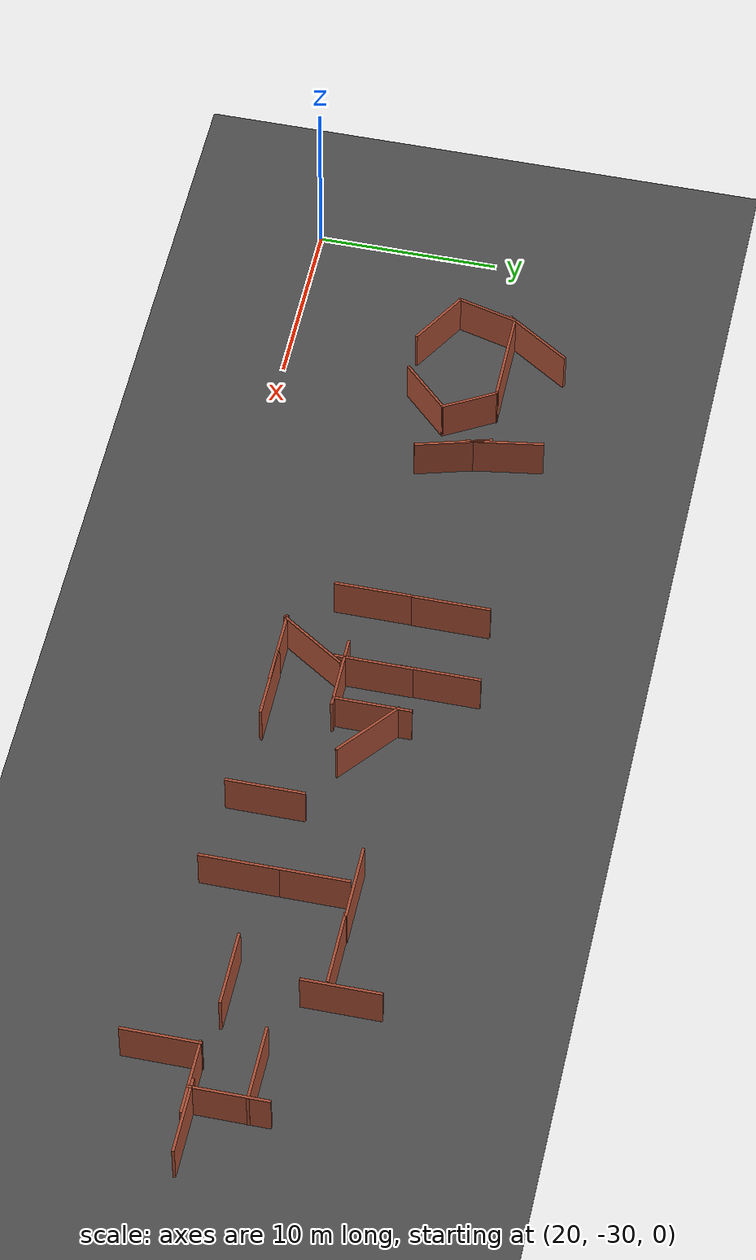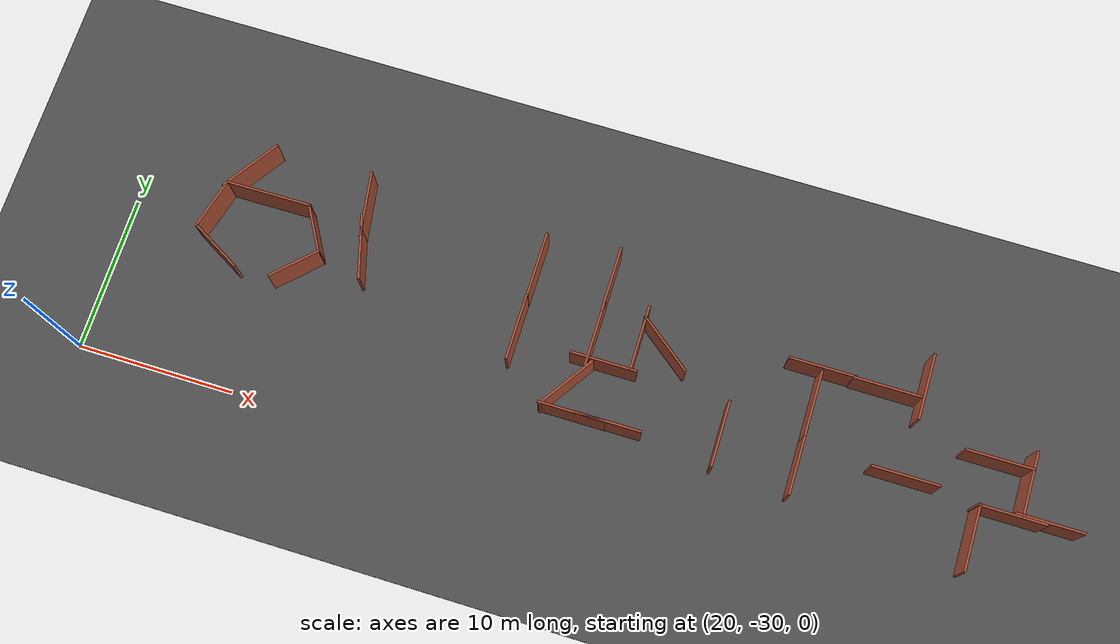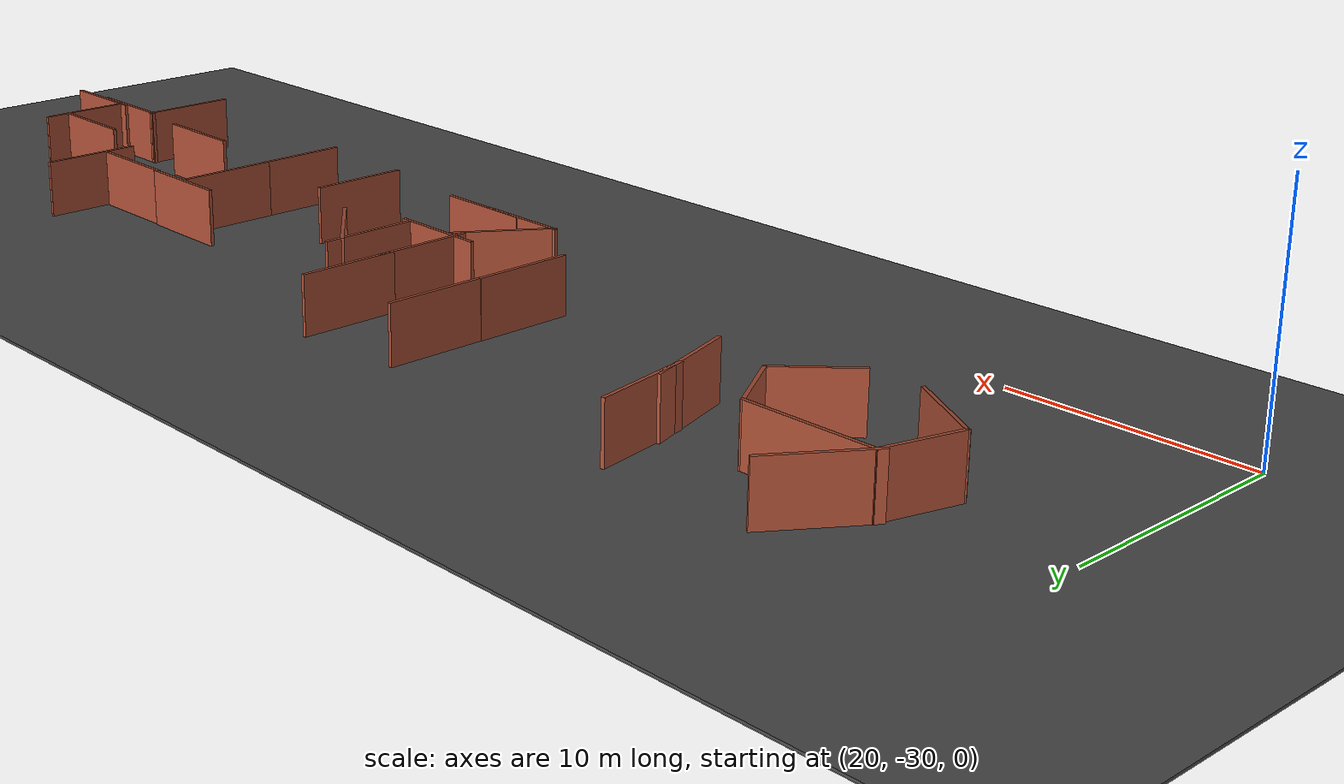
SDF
<sdf version="1.6">
 <world name="default">
  <model name="ground_plane">
   <static>1</static>
   <link name="link">
    <collision name="collision">
     <geometry><plane><normal>0 0 1</normal><size>200 200</size></plane></geometry>
     <surface><friction><ode><mu>100</mu><mu2>50</mu2></ode></friction></surface>
    </collision>
    <visual name="visual">
     <cast_shadows>0</cast_shadows>
     <geometry><plane><normal>0 0 1</normal><size>200 200</size></plane></geometry>
     <material>
      <script><uri>file://media/materials/scripts/gazebo.material</uri><name>Gazebo/Grey</name></script>
     </material>
    </visual>
   </link>
  </model>
  <model name="asphalt_plane">
   <static>1</static>
   <link name="link">
    <collision name="collision"><geometry><box><size>200 200 0.1</size></box></geometry></collision>
    <visual name="visual">
     <cast_shadows>0</cast_shadows>
     <geometry><box><size>200 200 0.1</size></box></geometry>
     <material>
      <script>
       <uri>model://asphalt_plane/materials/scripts</uri>
       <uri>model://asphalt_plane/materials/textures</uri>
       <name>vrc/asphalt</name>
      </script>
     </material>
    </visual>
   </link>
  </model>
  <model name="brick_worlds_1_clone_1_clone_clone_0_clone_3">
   <pose>45.9096 -21.4531 0 0 -0 0</pose>
   <link name="Wall_0">
    <collision name="Wall_0_Collision">
     <geometry><box><size>4.25 0.15 2.5</size></box></geometry>
     <pose>0 0 1.25 0 -0 0</pose>
    </collision>
    <visual name="Wall_0_Visual">
     <pose>0 0 1.25 0 -0 0</pose>
     <geometry><box><size>4.25 0.15 2.5</size></box></geometry>
     <material>
      <script><uri>file://media/materials/scripts/gazebo.material</uri><name>Gazebo/Bricks</name></script>
      <ambient>1 1 1 1</ambient>
     </material>
    </visual>
    <pose>0 -0 0 0 -0 1.5708</pose>
   </link>
   <static>1</static>
  </model>
  <model name="brick_worlds_1_clone_1_clone_clone_0_clone_5">
   <pose>45.9289 -17.2509 0 0 -0 0</pose>
   <link name="Wall_0">
    <collision name="Wall_0_Collision">
     <geometry><box><size>4.25 0.15 2.5</size></box></geometry>
     <pose>0 0 1.25 0 -0 0</pose>
    </collision>
    <visual name="Wall_0_Visual">
     <pose>0 0 1.25 0 -0 0</pose>
     <geometry><box><size>4.25 0.15 2.5</size></box></geometry>
     <material>
      <script><uri>file://media/materials/scripts/gazebo.material</uri><name>Gazebo/Bricks</name></script>
      <ambient>1 1 1 1</ambient>
     </material>
    </visual>
    <pose>0 -0 0 0 -0 1.5708</pose>
   </link>
   <static>1</static>
  </model>
  <model name="brick_room1_clone">
   <pose>28.8484 -20.2692 0 0 -0 0</pose>
   <link name="Wall_11">
    <collision name="Wall_11_Collision">
     <geometry><box><size>3.25 0.15 2.5</size></box></geometry>
     <pose>0 0 1.25 0 -0 0</pose>
    </collision>
    <visual name="Wall_11_Visual">
     <pose>0 0 1.25 0 -0 0</pose>
     <geometry><box><size>3.25 0.15 2.5</size></box></geometry>
     <material>
      <script><uri>file://media/materials/scripts/gazebo.material</uri><name>Gazebo/Bricks</name></script>
      <ambient>1 1 1 1</ambient>
     </material>
    </visual>
    <pose>3.12132 1.19483 0 0 0 -1.0472</pose>
   </link>
   <link name="Wall_12">
    <collision name="Wall_12_Collision">
     <geometry><box><size>3.5 0.15 2.5</size></box></geometry>
     <pose>0 0 1.25 0 -0 0</pose>
    </collision>
    <visual name="Wall_12_Visual">
     <pose>0 0 1.25 0 -0 0</pose>
     <geometry><box><size>3.5 0.15 2.5</size></box></geometry>
     <material>
      <script><uri>file://media/materials/scripts/gazebo.material</uri><name>Gazebo/Bricks</name></script>
      <ambient>1 1 1 1</ambient>
     </material>
    </visual>
    <pose>2.71192 -1.33192 0 0 0 -2.35619</pose>
   </link>
   <link name="Wall_7">
    <collision name="Wall_7_Collision">
     <geometry><box><size>5.52935 0.15 2.5</size></box></geometry>
     <pose>0 0 1.25 0 -0 0</pose>
    </collision>
    <visual name="Wall_7_Visual">
     <pose>0 0 1.25 0 -0 0</pose>
     <geometry><box><size>5.52935 0.15 2.5</size></box></geometry>
     <material>
      <script><uri>file://media/materials/scripts/gazebo.material</uri><name>Gazebo/Bricks</name></script>
      <ambient>1 1 1 1</ambient>
     </material>
    </visual>
    <pose>-0.343285 2.51793 0 0 0 -3.13444</pose>
   </link>
   <link name="Wall_8">
    <collision name="Wall_8_Collision">
     <geometry><box><size>3.5 0.15 2.5</size></box></geometry>
     <pose>0 0 1.25 0 -0 0</pose>
    </collision>
    <visual name="Wall_8_Visual">
     <pose>0 0 1.25 0 -0 0</pose>
     <geometry><box><size>3.5 0.15 2.5</size></box></geometry>
     <material>
      <script><uri>file://media/materials/scripts/gazebo.material</uri><name>Gazebo/Bricks</name></script>
      <ambient>1 1 1 1</ambient>
     </material>
    </visual>
    <pose>-3.46641 0.880761 0 0 0 -1.8326</pose>
   </link>
   <link name="Wall_9">
    <collision name="Wall_9_Collision">
     <geometry><box><size>3.75 0.15 2.5</size></box></geometry>
     <pose>0 0 1.25 0 -0 0</pose>
    </collision>
    <visual name="Wall_9_Visual">
     <pose>0 0 1.25 0 -0 0</pose>
     <geometry><box><size>3.75 0.15 2.5</size></box></geometry>
     <material>
      <script><uri>file://media/materials/scripts/gazebo.material</uri><name>Gazebo/Bricks</name></script>
      <ambient>1 1 1 1</ambient>
     </material>
    </visual>
    <pose>-2.34109 -1.63716 0 0 0 -0.523599</pose>
   </link>
   <static>1</static>
  </model>
  <model name="brick_worlds_1_clone_clone_2">
   <pose>75.4102 -25.8949 0 0 -0 0</pose>
   <link name="Wall_0">
    <collision name="Wall_0_Collision">
     <geometry><box><size>4.25 0.15 2.5</size></box></geometry>
     <pose>0 0 1.25 0 -0 0</pose>
    </collision>
    <visual name="Wall_0_Visual">
     <pose>0 0 1.25 0 -0 0</pose>
     <geometry><box><size>4.25 0.15 2.5</size></box></geometry>
     <material>
      <script><uri>file://media/materials/scripts/gazebo.material</uri><name>Gazebo/Bricks</name></script>
      <ambient>1 1 1 1</ambient>
     </material>
    </visual>
    <pose>0 -0 0 0 -0 1.5708</pose>
   </link>
   <static>1</static>
  </model>
  <model name="brick_worlds_1_clone_0_clone_clone_0_clone_0">
   <pose>77.3992 -23.8784 0 0 0 -1.57092</pose>
   <link name="Wall_0">
    <collision name="Wall_0_Collision">
     <geometry><box><size>4.25 0.15 2.5</size></box></geometry>
     <pose>0 0 1.25 0 -0 0</pose>
    </collision>
    <visual name="Wall_0_Visual">
     <pose>0 0 1.25 0 -0 0</pose>
     <geometry><box><size>4.25 0.15 2.5</size></box></geometry>
     <material>
      <script><uri>file://media/materials/scripts/gazebo.material</uri><name>Gazebo/Bricks</name></script>
      <ambient>1 1 1 1</ambient>
     </material>
    </visual>
    <pose>0 -0 0 0 -0 1.5708</pose>
   </link>
   <static>1</static>
  </model>
  <model name="brick_worlds_1_clone_0_clone_clone_0_clone_1">
   <pose>79.6307 -23.7333 0 0 0 -1.57092</pose>
   <link name="Wall_0">
    <collision name="Wall_0_Collision">
     <geometry><box><size>4.25 0.15 2.5</size></box></geometry>
     <pose>0 0 1.25 0 -0 0</pose>
    </collision>
    <visual name="Wall_0_Visual">
     <pose>0 0 1.25 0 -0 0</pose>
     <geometry><box><size>4.25 0.15 2.5</size></box></geometry>
     <material>
      <script><uri>file://media/materials/scripts/gazebo.material</uri><name>Gazebo/Bricks</name></script>
      <ambient>1 1 1 1</ambient>
     </material>
    </visual>
    <pose>0 -0 0 0 -0 1.5708</pose>
   </link>
   <static>1</static>
  </model>
  <model name="brick_worlds_1_clone_0_clone_clone_0_clone_3">
   <pose>70.8072 -23.4621 0 0 0 -1.57092</pose>
   <link name="Wall_0">
    <collision name="Wall_0_Collision">
     <geometry><box><size>4.25 0.15 2.5</size></box></geometry>
     <pose>0 0 1.25 0 -0 0</pose>
    </collision>
    <visual name="Wall_0_Visual">
     <pose>0 0 1.25 0 -0 0</pose>
     <geometry><box><size>4.25 0.15 2.5</size></box></geometry>
     <material>
      <script><uri>file://media/materials/scripts/gazebo.material</uri><name>Gazebo/Bricks</name></script>
      <ambient>1 1 1 1</ambient>
     </material>
    </visual>
    <pose>0 -0 0 0 -0 1.5708</pose>
   </link>
   <static>1</static>
  </model>
  <model name="brick_worlds_1_clone_0_clone_clone_0_clone_4">
   <pose>64.4358 -18.4576 0 0 0 -1.57092</pose>
   <link name="Wall_0">
    <collision name="Wall_0_Collision">
     <geometry><box><size>4.25 0.15 2.5</size></box></geometry>
     <pose>0 0 1.25 0 -0 0</pose>
    </collision>
    <visual name="Wall_0_Visual">
     <pose>0 0 1.25 0 -0 0</pose>
     <geometry><box><size>4.25 0.15 2.5</size></box></geometry>
     <material>
      <script><uri>file://media/materials/scripts/gazebo.material</uri><name>Gazebo/Bricks</name></script>
      <ambient>1 1 1 1</ambient>
     </material>
    </visual>
    <pose>0 -0 0 0 -0 1.5708</pose>
   </link>
   <static>1</static>
  </model>
  <model name="brick_worlds_1_clone_clone_0_clone">
   <pose>64.4379 -20.7736 0 0 -0 0</pose>
   <link name="Wall_0">
    <collision name="Wall_0_Collision">
     <geometry><box><size>4.25 0.15 2.5</size></box></geometry>
     <pose>0 0 1.25 0 -0 0</pose>
    </collision>
    <visual name="Wall_0_Visual">
     <pose>0 0 1.25 0 -0 0</pose>
     <geometry><box><size>4.25 0.15 2.5</size></box></geometry>
     <material>
      <script><uri>file://media/materials/scripts/gazebo.material</uri><name>Gazebo/Bricks</name></script>
      <ambient>1 1 1 1</ambient>
     </material>
    </visual>
    <pose>0 -0 0 0 -0 1.5708</pose>
   </link>
   <static>1</static>
  </model>
  <model name="brick_worlds_1_clone_clone_0_clone_1">
   <pose>59.5905 -24.2097 0 0 -0 0</pose>
   <link name="Wall_0">
    <collision name="Wall_0_Collision">
     <geometry><box><size>4.25 0.15 2.5</size></box></geometry>
     <pose>0 0 1.25 0 -0 0</pose>
    </collision>
    <visual name="Wall_0_Visual">
     <pose>0 0 1.25 0 -0 0</pose>
     <geometry><box><size>4.25 0.15 2.5</size></box></geometry>
     <material>
      <script><uri>file://media/materials/scripts/gazebo.material</uri><name>Gazebo/Bricks</name></script>
      <ambient>1 1 1 1</ambient>
     </material>
    </visual>
    <pose>0 -0 0 0 -0 1.5708</pose>
   </link>
   <static>1</static>
  </model>
  <model name="brick_worlds_1_clone_0_clone_clone_0_clone_2_clone">
   <pose>51.6197 -22 0 0 0 -1.57092</pose>
   <link name="Wall_0">
    <collision name="Wall_0_Collision">
     <geometry><box><size>4.25 0.15 2.5</size></box></geometry>
     <pose>0 0 1.25 0 -0 0</pose>
    </collision>
    <visual name="Wall_0_Visual">
     <pose>0 0 1.25 0 -0 0</pose>
     <geometry><box><size>4.25 0.15 2.5</size></box></geometry>
     <material>
      <script><uri>file://media/materials/scripts/gazebo.material</uri><name>Gazebo/Bricks</name></script>
      <ambient>1 1 1 1</ambient>
     </material>
    </visual>
    <pose>0 -0 0 0 -0 1.5708</pose>
   </link>
   <static>1</static>
  </model>
  <model name="brick_worlds_1_clone_clone_0_clone_clone">
   <pose>64.445 -24.4791 0 0 -0 0</pose>
   <link name="Wall_0">
    <collision name="Wall_0_Collision">
     <geometry><box><size>4.25 0.15 2.5</size></box></geometry>
     <pose>0 0 1.25 0 -0 0</pose>
    </collision>
    <visual name="Wall_0_Visual">
     <pose>0 0 1.25 0 -0 0</pose>
     <geometry><box><size>4.25 0.15 2.5</size></box></geometry>
     <material>
      <script><uri>file://media/materials/scripts/gazebo.material</uri><name>Gazebo/Bricks</name></script>
      <ambient>1 1 1 1</ambient>
     </material>
    </visual>
    <pose>0 -0 0 0 -0 1.5708</pose>
   </link>
   <static>1</static>
  </model>
  <model name="brick_worlds_1_clone_0_clone_clone_0_clone_3_clone">
   <pose>68.467 -18.5142 0 0 0 -1.57092</pose>
   <link name="Wall_0">
    <collision name="Wall_0_Collision">
     <geometry><box><size>4.25 0.15 2.5</size></box></geometry>
     <pose>0 0 1.25 0 -0 0</pose>
    </collision>
    <visual name="Wall_0_Visual">
     <pose>0 0 1.25 0 -0 0</pose>
     <geometry><box><size>4.25 0.15 2.5</size></box></geometry>
     <material>
      <script><uri>file://media/materials/scripts/gazebo.material</uri><name>Gazebo/Bricks</name></script>
      <ambient>1 1 1 1</ambient>
     </material>
    </visual>
    <pose>0 -0 0 0 -0 1.5708</pose>
   </link>
   <static>1</static>
  </model>
  <model name="brick_worlds_1_clone_clone_0_clone_clone_clone">
   <pose>70.7191 -17.783 0 0 -0 0</pose>
   <link name="Wall_0">
    <collision name="Wall_0_Collision">
     <geometry><box><size>4.25 0.15 2.5</size></box></geometry>
     <pose>0 0 1.25 0 -0 0</pose>
    </collision>
    <visual name="Wall_0_Visual">
     <pose>0 0 1.25 0 -0 0</pose>
     <geometry><box><size>4.25 0.15 2.5</size></box></geometry>
     <material>
      <script><uri>file://media/materials/scripts/gazebo.material</uri><name>Gazebo/Bricks</name></script>
      <ambient>1 1 1 1</ambient>
     </material>
    </visual>
    <pose>0 -0 0 0 -0 1.5708</pose>
   </link>
   <static>1</static>
  </model>
  <model name="brick_worlds_1_clone_clone_0_clone_clone_clone_0">
   <pose>77.9943 -21.8284 0 0 -0 0</pose>
   <link name="Wall_0">
    <collision name="Wall_0_Collision">
     <geometry><box><size>4.25 0.15 2.5</size></box></geometry>
     <pose>0 0 1.25 0 -0 0</pose>
    </collision>
    <visual name="Wall_0_Visual">
     <pose>0 0 1.25 0 -0 0</pose>
     <geometry><box><size>4.25 0.15 2.5</size></box></geometry>
     <material>
      <script><uri>file://media/materials/scripts/gazebo.material</uri><name>Gazebo/Bricks</name></script>
      <ambient>1 1 1 1</ambient>
     </material>
    </visual>
    <pose>0 -0 0 0 -0 1.5708</pose>
   </link>
   <static>1</static>
  </model>
  <model name="brick_worlds_1_clone_0_clone_clone_0_clone_3_clone_1">
   <pose>75.9651 -20.8585 0 0 0 -1.57092</pose>
   <link name="Wall_0">
    <collision name="Wall_0_Collision">
     <geometry><box><size>4.25 0.15 2.5</size></box></geometry>
     <pose>0 0 1.25 0 -0 0</pose>
    </collision>
    <visual name="Wall_0_Visual">
     <pose>0 0 1.25 0 -0 0</pose>
     <geometry><box><size>4.25 0.15 2.5</size></box></geometry>
     <material>
      <script><uri>file://media/materials/scripts/gazebo.material</uri><name>Gazebo/Bricks</name></script>
      <ambient>1 1 1 1</ambient>
     </material>
    </visual>
    <pose>0 -0 0 0 -0 1.5708</pose>
   </link>
   <static>1</static>
  </model>
  <model name="brick_worlds_1_clone_1_clone_7_clone_clone_0_clone_0">
   <pose>54.8792 -19.8299 0 0 -0 0.90029</pose>
   <link name="Wall_0">
    <collision name="Wall_0_Collision">
     <geometry><box><size>4.25 0.15 2.5</size></box></geometry>
     <pose>0 0 1.25 0 -0 0</pose>
    </collision>
    <visual name="Wall_0_Visual">
     <pose>0 0 1.25 0 -0 0</pose>
     <geometry><box><size>4.25 0.15 2.5</size></box></geometry>
     <material>
      <script><uri>file://media/materials/scripts/gazebo.material</uri><name>Gazebo/Bricks</name></script>
      <ambient>1 1 1 1</ambient>
     </material>
    </visual>
    <pose>0 -0 0 0 -0 1.5708</pose>
   </link>
   <static>1</static>
  </model>
  <model name="brick_worlds_1_clone_1_clone_0_clone">
   <pose>53.3077 -19.9406 0 0 -0 0</pose>
   <link name="Wall_0">
    <collision name="Wall_0_Collision">
     <geometry><box><size>4.25 0.15 2.5</size></box></geometry>
     <pose>0 0 1.25 0 -0 0</pose>
    </collision>
    <visual name="Wall_0_Visual">
     <pose>0 0 1.25 0 -0 0</pose>
     <geometry><box><size>4.25 0.15 2.5</size></box></geometry>
     <material>
      <script><uri>file://media/materials/scripts/gazebo.material</uri><name>Gazebo/Bricks</name></script>
      <ambient>1 1 1 1</ambient>
     </material>
    </visual>
    <pose>0 -0 0 0 -0 1.5708</pose>
   </link>
   <static>1</static>
  </model>
  <model name="brick_worlds_1_clone_1_clone_0_clone_1">
   <pose>50.5879 -16.8459 0 0 -0 0</pose>
   <link name="Wall_0">
    <collision name="Wall_0_Collision">
     <geometry><box><size>4.25 0.15 2.5</size></box></geometry>
     <pose>0 0 1.25 0 -0 0</pose>
    </collision>
    <visual name="Wall_0_Visual">
     <pose>0 0 1.25 0 -0 0</pose>
     <geometry><box><size>4.25 0.15 2.5</size></box></geometry>
     <material>
      <script><uri>file://media/materials/scripts/gazebo.material</uri><name>Gazebo/Bricks</name></script>
      <ambient>1 1 1 1</ambient>
     </material>
    </visual>
    <pose>0 -0 0 0 -0 1.5708</pose>
   </link>
   <static>1</static>
  </model>
  <model name="brick_worlds_1_clone_1_clone_0_clone_2">
   <pose>50.6056 -20.4384 0 0 -0 0</pose>
   <link name="Wall_0">
    <collision name="Wall_0_Collision">
     <geometry><box><size>4.25 0.15 2.5</size></box></geometry>
     <pose>0 0 1.25 0 -0 0</pose>
    </collision>
    <visual name="Wall_0_Visual">
     <pose>0 0 1.25 0 -0 0</pose>
     <geometry><box><size>4.25 0.15 2.5</size></box></geometry>
     <material>
      <script><uri>file://media/materials/scripts/gazebo.material</uri><name>Gazebo/Bricks</name></script>
      <ambient>1 1 1 1</ambient>
     </material>
    </visual>
    <pose>0 -0 0 0 -0 1.5708</pose>
   </link>
   <static>1</static>
  </model>
  <model name="brick_worlds_1_clone_1_clone_7_clone_clone_clone_clone_clone">
   <pose>49.8181 -23.9028 0 0 0 -0.589382</pose>
   <link name="Wall_0">
    <collision name="Wall_0_Collision">
     <geometry><box><size>4.25 0.15 2.5</size></box></geometry>
     <pose>0 0 1.25 0 -0 0</pose>
    </collision>
    <visual name="Wall_0_Visual">
     <pose>0 0 1.25 0 -0 0</pose>
     <geometry><box><size>4.25 0.15 2.5</size></box></geometry>
     <material>
      <script><uri>file://media/materials/scripts/gazebo.material</uri><name>Gazebo/Bricks</name></script>
      <ambient>1 1 1 1</ambient>
     </material>
    </visual>
    <pose>0 -0 0 0 -0 1.5708</pose>
   </link>
   <static>1</static>
  </model>
  <model name="brick_worlds_1_clone_0_clone_clone_0_clone_2_clone_0">
   <pose>50.6542 -25.5273 0 0 0 -1.57092</pose>
   <link name="Wall_0">
    <collision name="Wall_0_Collision">
     <geometry><box><size>4.25 0.15 2.5</size></box></geometry>
     <pose>0 0 1.25 0 -0 0</pose>
    </collision>
    <visual name="Wall_0_Visual">
     <pose>0 0 1.25 0 -0 0</pose>
     <geometry><box><size>4.25 0.15 2.5</size></box></geometry>
     <material>
      <script><uri>file://media/materials/scripts/gazebo.material</uri><name>Gazebo/Bricks</name></script>
      <ambient>1 1 1 1</ambient>
     </material>
    </visual>
    <pose>0 -0 0 0 -0 1.5708</pose>
   </link>
   <static>1</static>
  </model>
  <model name="brick_worlds_1_clone_0_clone_clone_0_clone_2_clone_1">
   <pose>52.9238 -25.5053 0 0 0 -1.57092</pose>
   <link name="Wall_0">
    <collision name="Wall_0_Collision">
     <geometry><box><size>4.25 0.15 2.5</size></box></geometry>
     <pose>0 0 1.25 0 -0 0</pose>
    </collision>
    <visual name="Wall_0_Visual">
     <pose>0 0 1.25 0 -0 0</pose>
     <geometry><box><size>4.25 0.15 2.5</size></box></geometry>
     <material>
      <script><uri>file://media/materials/scripts/gazebo.material</uri><name>Gazebo/Bricks</name></script>
      <ambient>1 1 1 1</ambient>
     </material>
    </visual>
    <pose>0 -0 0 0 -0 1.5708</pose>
   </link>
   <static>1</static>
  </model>
  <model name="brick_worlds_1_clone_1_clone_8">
   <pose>34.5498 -16.6137 0 0 -0 0.15582</pose>
   <link name="Wall_0">
    <collision name="Wall_0_Collision">
     <geometry><box><size>4.25 0.15 2.5</size></box></geometry>
     <pose>0 0 1.25 0 -0 0</pose>
    </collision>
    <visual name="Wall_0_Visual">
     <pose>0 0 1.25 0 -0 0</pose>
     <geometry><box><size>4.25 0.15 2.5</size></box></geometry>
     <material>
      <script><uri>file://media/materials/scripts/gazebo.material</uri><name>Gazebo/Bricks</name></script>
      <ambient>1 1 1 1</ambient>
     </material>
    </visual>
    <pose>0 -0 0 0 -0 1.5708</pose>
   </link>
   <static>1</static>
  </model>
  <model name="brick_worlds_1_clone_1_clone_9">
   <pose>35.117 -19.3474 0 0 -0 0.28136</pose>
   <link name="Wall_0">
    <collision name="Wall_0_Collision">
     <geometry><box><size>4.25 0.15 2.5</size></box></geometry>
     <pose>0 0 1.25 0 -0 0</pose>
    </collision>
    <visual name="Wall_0_Visual">
     <pose>0 0 1.25 0 -0 0</pose>
     <geometry><box><size>4.25 0.15 2.5</size></box></geometry>
     <material>
      <script><uri>file://media/materials/scripts/gazebo.material</uri><name>Gazebo/Bricks</name></script>
      <ambient>1 1 1 1</ambient>
     </material>
    </visual>
    <pose>0 -0 0 0 -0 1.5708</pose>
   </link>
   <static>1</static>
  </model>
  <model name="brick_worlds_1_clone_1_clone_7_clone_clone_clone_0_clone">
   <pose>26.7802 -16.3051 0 0 0 -0.589382</pose>
   <link name="Wall_0">
    <collision name="Wall_0_Collision">
     <geometry><box><size>4.25 0.15 2.5</size></box></geometry>
     <pose>0 0 1.25 0 -0 0</pose>
    </collision>
    <visual name="Wall_0_Visual">
     <pose>0 0 1.25 0 -0 0</pose>
     <geometry><box><size>4.25 0.15 2.5</size></box></geometry>
     <material>
      <script><uri>file://media/materials/scripts/gazebo.material</uri><name>Gazebo/Bricks</name></script>
      <ambient>1 1 1 1</ambient>
     </material>
    </visual>
    <pose>0 -0 0 0 -0 1.5708</pose>
   </link>
   <static>1</static>
  </model>
 </world>
</sdf>
